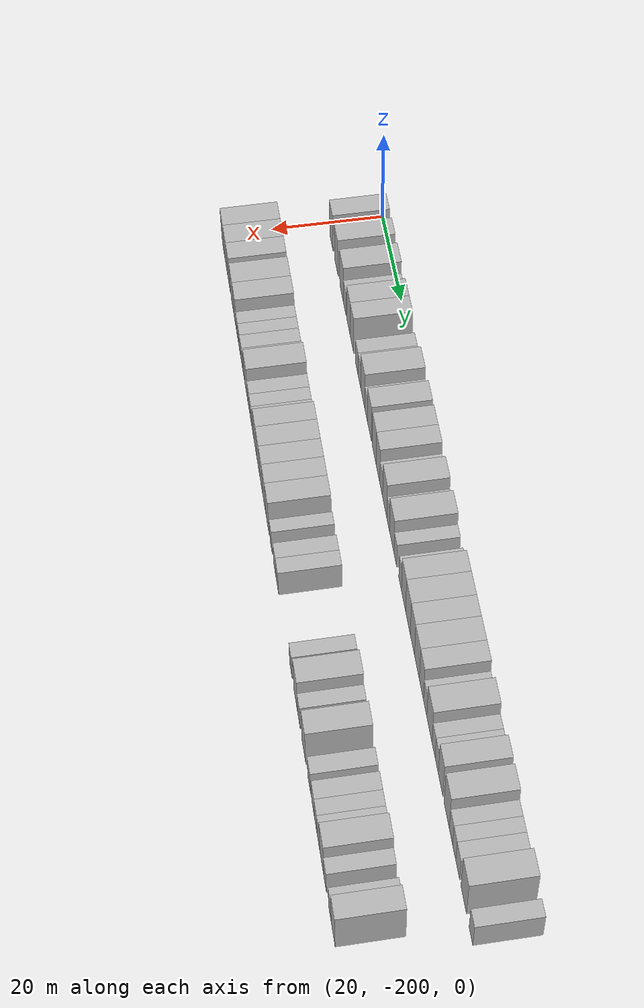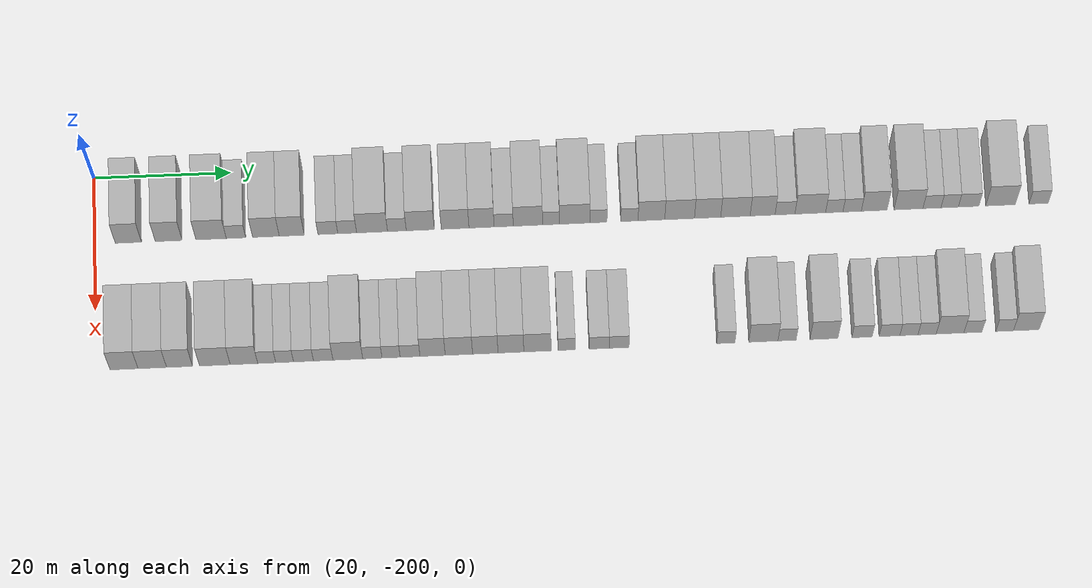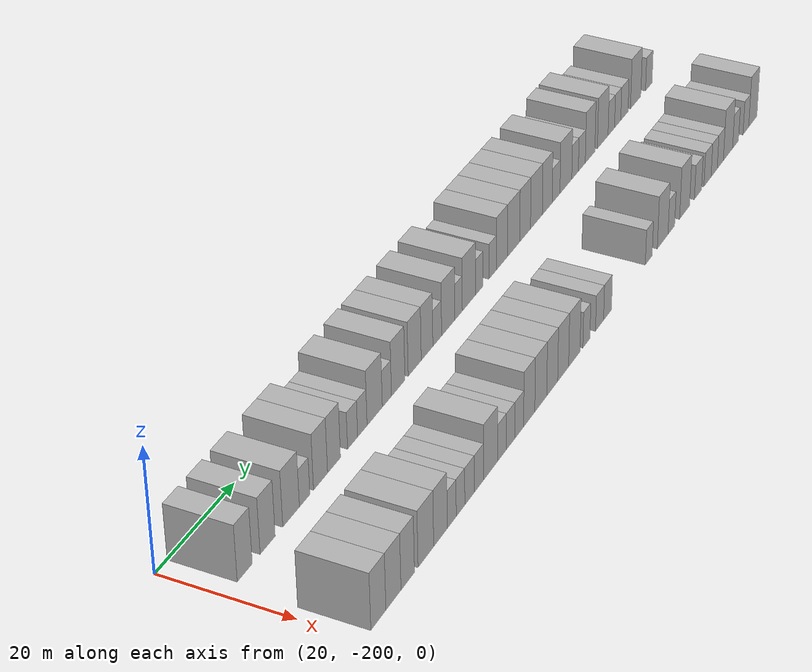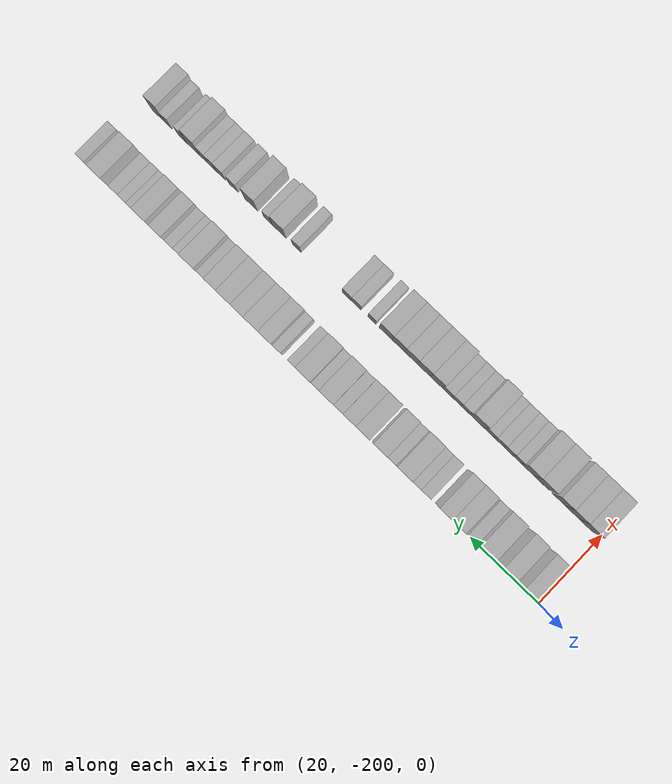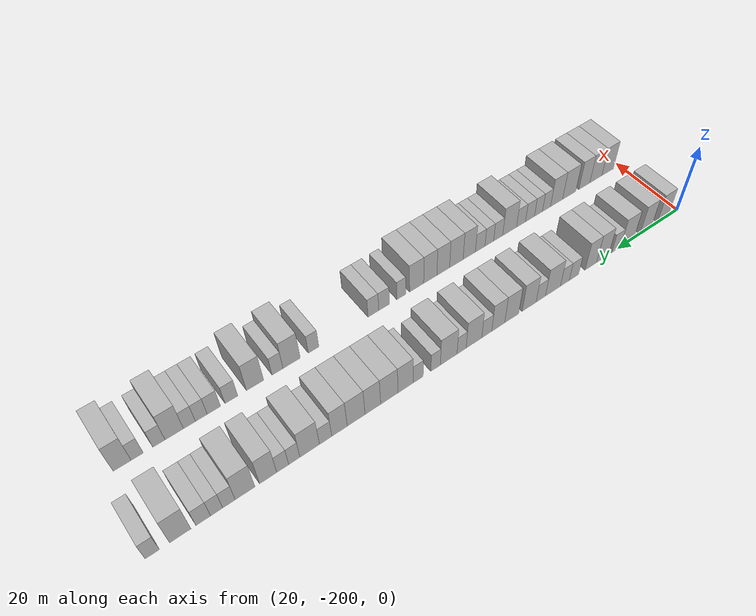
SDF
<sdf version="1.6">
 <world name="default">
  <model name="building_1">
   <static>1</static>
   <pose>25.0000 -195.1013 0 0.000000 0.000000 0.000000</pose>
   <link name="link">
    <pose>0 0 4.50 0 0 0</pose>
    <collision name="collision"><geometry><box><size>10.0000 3.7975 9.0000</size></box></geometry></collision>
    <visual name="visual">
     <cast_shadows>0</cast_shadows>
     <geometry><box><size>10.0000 3.7975 9.0000</size></box></geometry>
     <material>
      <script>
       <uri>model://HANNAS_wall/materials/scripts</uri>
       <uri>model://HANNAS_wall/materials/textures</uri>
       <name>vrc/HANNAS_wall</name>
      </script>
     </material>
    </visual>
   </link>
  </model>
  <model name="building_2">
   <static>1</static>
   <pose>25.0000 -189.2576 0 0.000000 0.000000 0.000000</pose>
   <link name="link">
    <pose>0 0 4.50 0 0 0</pose>
    <collision name="collision"><geometry><box><size>10.0000 3.8899 9.0000</size></box></geometry></collision>
    <visual name="visual">
     <cast_shadows>0</cast_shadows>
     <geometry><box><size>10.0000 3.8899 9.0000</size></box></geometry>
     <material>
      <script>
       <uri>model://HANNAS_wall/materials/scripts</uri>
       <uri>model://HANNAS_wall/materials/textures</uri>
       <name>vrc/HANNAS_wall</name>
      </script>
     </material>
    </visual>
   </link>
  </model>
  <model name="building_3">
   <static>1</static>
   <pose>25.0000 -183.1088 0 0.000000 0.000000 0.000000</pose>
   <link name="link">
    <pose>0 0 4.50 0 0 0</pose>
    <collision name="collision"><geometry><box><size>10.0000 4.4077 9.0000</size></box></geometry></collision>
    <visual name="visual">
     <cast_shadows>0</cast_shadows>
     <geometry><box><size>10.0000 4.4077 9.0000</size></box></geometry>
     <material>
      <script>
       <uri>model://HANNAS_wall/materials/scripts</uri>
       <uri>model://HANNAS_wall/materials/textures</uri>
       <name>vrc/HANNAS_wall</name>
      </script>
     </material>
    </visual>
   </link>
  </model>
  <model name="building_4">
   <static>1</static>
   <pose>25.0000 -179.4958 0 0.000000 0.000000 0.000000</pose>
   <link name="link">
    <pose>0 0 3.00 0 0 0</pose>
    <collision name="collision"><geometry><box><size>10.0000 2.8183 6.0000</size></box></geometry></collision>
    <visual name="visual">
     <cast_shadows>0</cast_shadows>
     <geometry><box><size>10.0000 2.8183 6.0000</size></box></geometry>
     <material>
      <script>
       <uri>model://HANNAS_wall/materials/scripts</uri>
       <uri>model://HANNAS_wall/materials/textures</uri>
       <name>vrc/HANNAS_wall</name>
      </script>
     </material>
    </visual>
   </link>
  </model>
  <model name="building_5">
   <static>1</static>
   <pose>25.0000 -175.1530 0 0.000000 0.000000 0.000000</pose>
   <link name="link">
    <pose>0 0 4.50 0 0 0</pose>
    <collision name="collision"><geometry><box><size>10.0000 3.8672 9.0000</size></box></geometry></collision>
    <visual name="visual">
     <cast_shadows>0</cast_shadows>
     <geometry><box><size>10.0000 3.8672 9.0000</size></box></geometry>
     <material>
      <script>
       <uri>model://HANNAS_wall/materials/scripts</uri>
       <uri>model://HANNAS_wall/materials/textures</uri>
       <name>vrc/HANNAS_wall</name>
      </script>
     </material>
    </visual>
   </link>
  </model>
  <model name="building_6">
   <static>1</static>
   <pose>25.0000 -171.4095 0 0.000000 0.000000 0.000000</pose>
   <link name="link">
    <pose>0 0 4.50 0 0 0</pose>
    <collision name="collision"><geometry><box><size>10.0000 3.6197 9.0000</size></box></geometry></collision>
    <visual name="visual">
     <cast_shadows>0</cast_shadows>
     <geometry><box><size>10.0000 3.6197 9.0000</size></box></geometry>
     <material>
      <script>
       <uri>model://HANNAS_wall/materials/scripts</uri>
       <uri>model://HANNAS_wall/materials/textures</uri>
       <name>vrc/HANNAS_wall</name>
      </script>
     </material>
    </visual>
   </link>
  </model>
  <model name="building_7">
   <static>1</static>
   <pose>25.0000 -166.1617 0 0.000000 0.000000 0.000000</pose>
   <link name="link">
    <pose>0 0 3.00 0 0 0</pose>
    <collision name="collision"><geometry><box><size>10.0000 2.8759 6.0000</size></box></geometry></collision>
    <visual name="visual">
     <cast_shadows>0</cast_shadows>
     <geometry><box><size>10.0000 2.8759 6.0000</size></box></geometry>
     <material>
      <script>
       <uri>model://HANNAS_wall/materials/scripts</uri>
       <uri>model://HANNAS_wall/materials/textures</uri>
       <name>vrc/HANNAS_wall</name>
      </script>
     </material>
    </visual>
   </link>
  </model>
  <model name="building_8">
   <static>1</static>
   <pose>25.0000 -163.3585 0 0.000000 0.000000 0.000000</pose>
   <link name="link">
    <pose>0 0 3.00 0 0 0</pose>
    <collision name="collision"><geometry><box><size>10.0000 2.7304 6.0000</size></box></geometry></collision>
    <visual name="visual">
     <cast_shadows>0</cast_shadows>
     <geometry><box><size>10.0000 2.7304 6.0000</size></box></geometry>
     <material>
      <script>
       <uri>model://HANNAS_wall/materials/scripts</uri>
       <uri>model://HANNAS_wall/materials/textures</uri>
       <name>vrc/HANNAS_wall</name>
      </script>
     </material>
    </visual>
   </link>
  </model>
  <model name="building_9">
   <static>1</static>
   <pose>25.0000 -159.7490 0 0.000000 0.000000 0.000000</pose>
   <link name="link">
    <pose>0 0 4.50 0 0 0</pose>
    <collision name="collision"><geometry><box><size>10.0000 4.4887 9.0000</size></box></geometry></collision>
    <visual name="visual">
     <cast_shadows>0</cast_shadows>
     <geometry><box><size>10.0000 4.4887 9.0000</size></box></geometry>
     <material>
      <script>
       <uri>model://HANNAS_wall/materials/scripts</uri>
       <uri>model://HANNAS_wall/materials/textures</uri>
       <name>vrc/HANNAS_wall</name>
      </script>
     </material>
    </visual>
   </link>
  </model>
  <model name="building_10">
   <static>1</static>
   <pose>25.0000 -156.1416 0 0.000000 0.000000 0.000000</pose>
   <link name="link">
    <pose>0 0 3.00 0 0 0</pose>
    <collision name="collision"><geometry><box><size>10.0000 2.7260 6.0000</size></box></geometry></collision>
    <visual name="visual">
     <cast_shadows>0</cast_shadows>
     <geometry><box><size>10.0000 2.7260 6.0000</size></box></geometry>
     <material>
      <script>
       <uri>model://HANNAS_wall/materials/scripts</uri>
       <uri>model://HANNAS_wall/materials/textures</uri>
       <name>vrc/HANNAS_wall</name>
      </script>
     </material>
    </visual>
   </link>
  </model>
  <model name="building_11">
   <static>1</static>
   <pose>25.0000 -152.7426 0 0.000000 0.000000 0.000000</pose>
   <link name="link">
    <pose>0 0 4.50 0 0 0</pose>
    <collision name="collision"><geometry><box><size>10.0000 4.0721 9.0000</size></box></geometry></collision>
    <visual name="visual">
     <cast_shadows>0</cast_shadows>
     <geometry><box><size>10.0000 4.0721 9.0000</size></box></geometry>
     <material>
      <script>
       <uri>model://HANNAS_wall/materials/scripts</uri>
       <uri>model://HANNAS_wall/materials/textures</uri>
       <name>vrc/HANNAS_wall</name>
      </script>
     </material>
    </visual>
   </link>
  </model>
  <model name="building_12">
   <static>1</static>
   <pose>25.0000 -147.6966 0 0.000000 0.000000 0.000000</pose>
   <link name="link">
    <pose>0 0 4.50 0 0 0</pose>
    <collision name="collision"><geometry><box><size>10.0000 4.0199 9.0000</size></box></geometry></collision>
    <visual name="visual">
     <cast_shadows>0</cast_shadows>
     <geometry><box><size>10.0000 4.0199 9.0000</size></box></geometry>
     <material>
      <script>
       <uri>model://HANNAS_wall/materials/scripts</uri>
       <uri>model://HANNAS_wall/materials/textures</uri>
       <name>vrc/HANNAS_wall</name>
      </script>
     </material>
    </visual>
   </link>
  </model>
  <model name="building_13">
   <static>1</static>
   <pose>25.0000 -143.8593 0 0.000000 0.000000 0.000000</pose>
   <link name="link">
    <pose>0 0 4.50 0 0 0</pose>
    <collision name="collision"><geometry><box><size>10.0000 3.6547 9.0000</size></box></geometry></collision>
    <visual name="visual">
     <cast_shadows>0</cast_shadows>
     <geometry><box><size>10.0000 3.6547 9.0000</size></box></geometry>
     <material>
      <script>
       <uri>model://HANNAS_wall/materials/scripts</uri>
       <uri>model://HANNAS_wall/materials/textures</uri>
       <name>vrc/HANNAS_wall</name>
      </script>
     </material>
    </visual>
   </link>
  </model>
  <model name="building_14">
   <static>1</static>
   <pose>25.0000 -140.6452 0 0.000000 0.000000 0.000000</pose>
   <link name="link">
    <pose>0 0 3.00 0 0 0</pose>
    <collision name="collision"><geometry><box><size>10.0000 2.7734 6.0000</size></box></geometry></collision>
    <visual name="visual">
     <cast_shadows>0</cast_shadows>
     <geometry><box><size>10.0000 2.7734 6.0000</size></box></geometry>
     <material>
      <script>
       <uri>model://HANNAS_wall/materials/scripts</uri>
       <uri>model://HANNAS_wall/materials/textures</uri>
       <name>vrc/HANNAS_wall</name>
      </script>
     </material>
    </visual>
   </link>
  </model>
  <model name="building_15">
   <static>1</static>
   <pose>25.0000 -137.1260 0 0.000000 0.000000 0.000000</pose>
   <link name="link">
    <pose>0 0 4.50 0 0 0</pose>
    <collision name="collision"><geometry><box><size>10.0000 4.2651 9.0000</size></box></geometry></collision>
    <visual name="visual">
     <cast_shadows>0</cast_shadows>
     <geometry><box><size>10.0000 4.2651 9.0000</size></box></geometry>
     <material>
      <script>
       <uri>model://HANNAS_wall/materials/scripts</uri>
       <uri>model://HANNAS_wall/materials/textures</uri>
       <name>vrc/HANNAS_wall</name>
      </script>
     </material>
    </visual>
   </link>
  </model>
  <model name="building_16">
   <static>1</static>
   <pose>25.0000 -133.7711 0 0.000000 0.000000 0.000000</pose>
   <link name="link">
    <pose>0 0 3.00 0 0 0</pose>
    <collision name="collision"><geometry><box><size>10.0000 2.4447 6.0000</size></box></geometry></collision>
    <visual name="visual">
     <cast_shadows>0</cast_shadows>
     <geometry><box><size>10.0000 2.4447 6.0000</size></box></geometry>
     <material>
      <script>
       <uri>model://HANNAS_wall/materials/scripts</uri>
       <uri>model://HANNAS_wall/materials/textures</uri>
       <name>vrc/HANNAS_wall</name>
      </script>
     </material>
    </visual>
   </link>
  </model>
  <model name="building_17">
   <static>1</static>
   <pose>25.0000 -130.3299 0 0.000000 0.000000 0.000000</pose>
   <link name="link">
    <pose>0 0 4.50 0 0 0</pose>
    <collision name="collision"><geometry><box><size>10.0000 4.4376 9.0000</size></box></geometry></collision>
    <visual name="visual">
     <cast_shadows>0</cast_shadows>
     <geometry><box><size>10.0000 4.4376 9.0000</size></box></geometry>
     <material>
      <script>
       <uri>model://HANNAS_wall/materials/scripts</uri>
       <uri>model://HANNAS_wall/materials/textures</uri>
       <name>vrc/HANNAS_wall</name>
      </script>
     </material>
    </visual>
   </link>
  </model>
  <model name="building_18">
   <static>1</static>
   <pose>25.0000 -126.8712 0 0.000000 0.000000 0.000000</pose>
   <link name="link">
    <pose>0 0 3.00 0 0 0</pose>
    <collision name="collision"><geometry><box><size>10.0000 2.4798 6.0000</size></box></geometry></collision>
    <visual name="visual">
     <cast_shadows>0</cast_shadows>
     <geometry><box><size>10.0000 2.4798 6.0000</size></box></geometry>
     <material>
      <script>
       <uri>model://HANNAS_wall/materials/scripts</uri>
       <uri>model://HANNAS_wall/materials/textures</uri>
       <name>vrc/HANNAS_wall</name>
      </script>
     </material>
    </visual>
   </link>
  </model>
  <model name="building_19">
   <static>1</static>
   <pose>25.0000 -122.3737 0 0.000000 0.000000 0.000000</pose>
   <link name="link">
    <pose>0 0 3.00 0 0 0</pose>
    <collision name="collision"><geometry><box><size>10.0000 2.5151 6.0000</size></box></geometry></collision>
    <visual name="visual">
     <cast_shadows>0</cast_shadows>
     <geometry><box><size>10.0000 2.5151 6.0000</size></box></geometry>
     <material>
      <script>
       <uri>model://HANNAS_wall/materials/scripts</uri>
       <uri>model://HANNAS_wall/materials/textures</uri>
       <name>vrc/HANNAS_wall</name>
      </script>
     </material>
    </visual>
   </link>
  </model>
  <model name="building_20">
   <static>1</static>
   <pose>25.0000 -119.1748 0 0.000000 0.000000 0.000000</pose>
   <link name="link">
    <pose>0 0 4.50 0 0 0</pose>
    <collision name="collision"><geometry><box><size>10.0000 3.8827 9.0000</size></box></geometry></collision>
    <visual name="visual">
     <cast_shadows>0</cast_shadows>
     <geometry><box><size>10.0000 3.8827 9.0000</size></box></geometry>
     <material>
      <script>
       <uri>model://HANNAS_wall/materials/scripts</uri>
       <uri>model://HANNAS_wall/materials/textures</uri>
       <name>vrc/HANNAS_wall</name>
      </script>
     </material>
    </visual>
   </link>
  </model>
  <model name="building_21">
   <static>1</static>
   <pose>25.0000 -115.0764 0 0.000000 0.000000 0.000000</pose>
   <link name="link">
    <pose>0 0 4.50 0 0 0</pose>
    <collision name="collision"><geometry><box><size>10.0000 4.3143 9.0000</size></box></geometry></collision>
    <visual name="visual">
     <cast_shadows>0</cast_shadows>
     <geometry><box><size>10.0000 4.3143 9.0000</size></box></geometry>
     <material>
      <script>
       <uri>model://HANNAS_wall/materials/scripts</uri>
       <uri>model://HANNAS_wall/materials/textures</uri>
       <name>vrc/HANNAS_wall</name>
      </script>
     </material>
    </visual>
   </link>
  </model>
  <model name="building_22">
   <static>1</static>
   <pose>25.0000 -111.0092 0 0.000000 0.000000 0.000000</pose>
   <link name="link">
    <pose>0 0 4.50 0 0 0</pose>
    <collision name="collision"><geometry><box><size>10.0000 3.8200 9.0000</size></box></geometry></collision>
    <visual name="visual">
     <cast_shadows>0</cast_shadows>
     <geometry><box><size>10.0000 3.8200 9.0000</size></box></geometry>
     <material>
      <script>
       <uri>model://HANNAS_wall/materials/scripts</uri>
       <uri>model://HANNAS_wall/materials/textures</uri>
       <name>vrc/HANNAS_wall</name>
      </script>
     </material>
    </visual>
   </link>
  </model>
  <model name="building_23">
   <static>1</static>
   <pose>25.0000 -106.9611 0 0.000000 0.000000 0.000000</pose>
   <link name="link">
    <pose>0 0 4.50 0 0 0</pose>
    <collision name="collision"><geometry><box><size>10.0000 4.2764 9.0000</size></box></geometry></collision>
    <visual name="visual">
     <cast_shadows>0</cast_shadows>
     <geometry><box><size>10.0000 4.2764 9.0000</size></box></geometry>
     <material>
      <script>
       <uri>model://HANNAS_wall/materials/scripts</uri>
       <uri>model://HANNAS_wall/materials/textures</uri>
       <name>vrc/HANNAS_wall</name>
      </script>
     </material>
    </visual>
   </link>
  </model>
  <model name="building_24">
   <static>1</static>
   <pose>25.0000 -103.0037 0 0.000000 0.000000 0.000000</pose>
   <link name="link">
    <pose>0 0 4.50 0 0 0</pose>
    <collision name="collision"><geometry><box><size>10.0000 3.6384 9.0000</size></box></geometry></collision>
    <visual name="visual">
     <cast_shadows>0</cast_shadows>
     <geometry><box><size>10.0000 3.6384 9.0000</size></box></geometry>
     <material>
      <script>
       <uri>model://HANNAS_wall/materials/scripts</uri>
       <uri>model://HANNAS_wall/materials/textures</uri>
       <name>vrc/HANNAS_wall</name>
      </script>
     </material>
    </visual>
   </link>
  </model>
  <model name="building_25">
   <static>1</static>
   <pose>25.0000 -99.7405 0 0.000000 0.000000 0.000000</pose>
   <link name="link">
    <pose>0 0 3.00 0 0 0</pose>
    <collision name="collision"><geometry><box><size>10.0000 2.8878 6.0000</size></box></geometry></collision>
    <visual name="visual">
     <cast_shadows>0</cast_shadows>
     <geometry><box><size>10.0000 2.8878 6.0000</size></box></geometry>
     <material>
      <script>
       <uri>model://HANNAS_wall/materials/scripts</uri>
       <uri>model://HANNAS_wall/materials/textures</uri>
       <name>vrc/HANNAS_wall</name>
      </script>
     </material>
    </visual>
   </link>
  </model>
  <model name="building_26">
   <static>1</static>
   <pose>25.0000 -96.0663 0 0.000000 0.000000 0.000000</pose>
   <link name="link">
    <pose>0 0 4.50 0 0 0</pose>
    <collision name="collision"><geometry><box><size>10.0000 4.4608 9.0000</size></box></geometry></collision>
    <visual name="visual">
     <cast_shadows>0</cast_shadows>
     <geometry><box><size>10.0000 4.4608 9.0000</size></box></geometry>
     <material>
      <script>
       <uri>model://HANNAS_wall/materials/scripts</uri>
       <uri>model://HANNAS_wall/materials/textures</uri>
       <name>vrc/HANNAS_wall</name>
      </script>
     </material>
    </visual>
   </link>
  </model>
  <model name="building_27">
   <static>1</static>
   <pose>25.0000 -92.5703 0 0.000000 0.000000 0.000000</pose>
   <link name="link">
    <pose>0 0 3.00 0 0 0</pose>
    <collision name="collision"><geometry><box><size>10.0000 2.5311 6.0000</size></box></geometry></collision>
    <visual name="visual">
     <cast_shadows>0</cast_shadows>
     <geometry><box><size>10.0000 2.5311 6.0000</size></box></geometry>
     <material>
      <script>
       <uri>model://HANNAS_wall/materials/scripts</uri>
       <uri>model://HANNAS_wall/materials/textures</uri>
       <name>vrc/HANNAS_wall</name>
      </script>
     </material>
    </visual>
   </link>
  </model>
  <model name="building_28">
   <static>1</static>
   <pose>25.0000 -89.9703 0 0.000000 0.000000 0.000000</pose>
   <link name="link">
    <pose>0 0 3.00 0 0 0</pose>
    <collision name="collision"><geometry><box><size>10.0000 2.6690 6.0000</size></box></geometry></collision>
    <visual name="visual">
     <cast_shadows>0</cast_shadows>
     <geometry><box><size>10.0000 2.6690 6.0000</size></box></geometry>
     <material>
      <script>
       <uri>model://HANNAS_wall/materials/scripts</uri>
       <uri>model://HANNAS_wall/materials/textures</uri>
       <name>vrc/HANNAS_wall</name>
      </script>
     </material>
    </visual>
   </link>
  </model>
  <model name="building_29">
   <static>1</static>
   <pose>25.0000 -86.7608 0 0.000000 0.000000 0.000000</pose>
   <link name="link">
    <pose>0 0 4.50 0 0 0</pose>
    <collision name="collision"><geometry><box><size>10.0000 3.7500 9.0000</size></box></geometry></collision>
    <visual name="visual">
     <cast_shadows>0</cast_shadows>
     <geometry><box><size>10.0000 3.7500 9.0000</size></box></geometry>
     <material>
      <script>
       <uri>model://HANNAS_wall/materials/scripts</uri>
       <uri>model://HANNAS_wall/materials/textures</uri>
       <name>vrc/HANNAS_wall</name>
      </script>
     </material>
    </visual>
   </link>
  </model>
  <model name="building_30">
   <static>1</static>
   <pose>25.0000 -81.7724 0 0.000000 0.000000 0.000000</pose>
   <link name="link">
    <pose>0 0 4.50 0 0 0</pose>
    <collision name="collision"><geometry><box><size>10.0000 4.2270 9.0000</size></box></geometry></collision>
    <visual name="visual">
     <cast_shadows>0</cast_shadows>
     <geometry><box><size>10.0000 4.2270 9.0000</size></box></geometry>
     <material>
      <script>
       <uri>model://HANNAS_wall/materials/scripts</uri>
       <uri>model://HANNAS_wall/materials/textures</uri>
       <name>vrc/HANNAS_wall</name>
      </script>
     </material>
    </visual>
   </link>
  </model>
  <model name="building_31">
   <static>1</static>
   <pose>25.0000 -78.3434 0 0.000000 0.000000 0.000000</pose>
   <link name="link">
    <pose>0 0 3.00 0 0 0</pose>
    <collision name="collision"><geometry><box><size>10.0000 2.6310 6.0000</size></box></geometry></collision>
    <visual name="visual">
     <cast_shadows>0</cast_shadows>
     <geometry><box><size>10.0000 2.6310 6.0000</size></box></geometry>
     <material>
      <script>
       <uri>model://HANNAS_wall/materials/scripts</uri>
       <uri>model://HANNAS_wall/materials/textures</uri>
       <name>vrc/HANNAS_wall</name>
      </script>
     </material>
    </visual>
   </link>
  </model>
  <model name="building_32">
   <static>1</static>
   <pose>25.0000 -75.7608 0 0.000000 0.000000 0.000000</pose>
   <link name="link">
    <pose>0 0 3.00 0 0 0</pose>
    <collision name="collision"><geometry><box><size>10.0000 2.5341 6.0000</size></box></geometry></collision>
    <visual name="visual">
     <cast_shadows>0</cast_shadows>
     <geometry><box><size>10.0000 2.5341 6.0000</size></box></geometry>
     <material>
      <script>
       <uri>model://HANNAS_wall/materials/scripts</uri>
       <uri>model://HANNAS_wall/materials/textures</uri>
       <name>vrc/HANNAS_wall</name>
      </script>
     </material>
    </visual>
   </link>
  </model>
  <model name="building_33">
   <static>1</static>
   <pose>25.0000 -72.9975 0 0.000000 0.000000 0.000000</pose>
   <link name="link">
    <pose>0 0 3.00 0 0 0</pose>
    <collision name="collision"><geometry><box><size>10.0000 2.9925 6.0000</size></box></geometry></collision>
    <visual name="visual">
     <cast_shadows>0</cast_shadows>
     <geometry><box><size>10.0000 2.9925 6.0000</size></box></geometry>
     <material>
      <script>
       <uri>model://HANNAS_wall/materials/scripts</uri>
       <uri>model://HANNAS_wall/materials/textures</uri>
       <name>vrc/HANNAS_wall</name>
      </script>
     </material>
    </visual>
   </link>
  </model>
  <model name="building_34">
   <static>1</static>
   <pose>25.0000 -68.3537 0 0.000000 0.000000 0.000000</pose>
   <link name="link">
    <pose>0 0 4.50 0 0 0</pose>
    <collision name="collision"><geometry><box><size>10.0000 4.2952 9.0000</size></box></geometry></collision>
    <visual name="visual">
     <cast_shadows>0</cast_shadows>
     <geometry><box><size>10.0000 4.2952 9.0000</size></box></geometry>
     <material>
      <script>
       <uri>model://HANNAS_wall/materials/scripts</uri>
       <uri>model://HANNAS_wall/materials/textures</uri>
       <name>vrc/HANNAS_wall</name>
      </script>
     </material>
    </visual>
   </link>
  </model>
  <model name="building_35">
   <static>1</static>
   <pose>25.0000 -62.8102 0 0.000000 0.000000 0.000000</pose>
   <link name="link">
    <pose>0 0 3.00 0 0 0</pose>
    <collision name="collision"><geometry><box><size>10.0000 2.7916 6.0000</size></box></geometry></collision>
    <visual name="visual">
     <cast_shadows>0</cast_shadows>
     <geometry><box><size>10.0000 2.7916 6.0000</size></box></geometry>
     <material>
      <script>
       <uri>model://HANNAS_wall/materials/scripts</uri>
       <uri>model://HANNAS_wall/materials/textures</uri>
       <name>vrc/HANNAS_wall</name>
      </script>
     </material>
    </visual>
   </link>
  </model>
  <model name="building_100">
   <static>1</static>
   <pose>44.0000 -195.9885 0 0.000000 0.000000 0.000000</pose>
   <link name="link">
    <pose>0 0 4.50 0 0 0</pose>
    <collision name="collision"><geometry><box><size>10.0000 4.0231 9.0000</size></box></geometry></collision>
    <visual name="visual">
     <cast_shadows>0</cast_shadows>
     <geometry><box><size>10.0000 4.0231 9.0000</size></box></geometry>
     <material>
      <script>
       <uri>model://HANNAS_wall/materials/scripts</uri>
       <uri>model://HANNAS_wall/materials/textures</uri>
       <name>vrc/HANNAS_wall</name>
      </script>
     </material>
    </visual>
   </link>
  </model>
  <model name="building_101">
   <static>1</static>
   <pose>44.0000 -191.9277 0 0.000000 0.000000 0.000000</pose>
   <link name="link">
    <pose>0 0 4.50 0 0 0</pose>
    <collision name="collision"><geometry><box><size>10.0000 4.0985 9.0000</size></box></geometry></collision>
    <visual name="visual">
     <cast_shadows>0</cast_shadows>
     <geometry><box><size>10.0000 4.0985 9.0000</size></box></geometry>
     <material>
      <script>
       <uri>model://HANNAS_wall/materials/scripts</uri>
       <uri>model://HANNAS_wall/materials/textures</uri>
       <name>vrc/HANNAS_wall</name>
      </script>
     </material>
    </visual>
   </link>
  </model>
  <model name="building_102">
   <static>1</static>
   <pose>44.0000 -188.0148 0 0.000000 0.000000 0.000000</pose>
   <link name="link">
    <pose>0 0 4.50 0 0 0</pose>
    <collision name="collision"><geometry><box><size>10.0000 3.7272 9.0000</size></box></geometry></collision>
    <visual name="visual">
     <cast_shadows>0</cast_shadows>
     <geometry><box><size>10.0000 3.7272 9.0000</size></box></geometry>
     <material>
      <script>
       <uri>model://HANNAS_wall/materials/scripts</uri>
       <uri>model://HANNAS_wall/materials/textures</uri>
       <name>vrc/HANNAS_wall</name>
      </script>
     </material>
    </visual>
   </link>
  </model>
  <model name="building_103">
   <static>1</static>
   <pose>44.0000 -182.9445 0 0.000000 0.000000 0.000000</pose>
   <link name="link">
    <pose>0 0 4.50 0 0 0</pose>
    <collision name="collision"><geometry><box><size>10.0000 4.4134 9.0000</size></box></geometry></collision>
    <visual name="visual">
     <cast_shadows>0</cast_shadows>
     <geometry><box><size>10.0000 4.4134 9.0000</size></box></geometry>
     <material>
      <script>
       <uri>model://HANNAS_wall/materials/scripts</uri>
       <uri>model://HANNAS_wall/materials/textures</uri>
       <name>vrc/HANNAS_wall</name>
      </script>
     </material>
    </visual>
   </link>
  </model>
  <model name="building_104">
   <static>1</static>
   <pose>44.0000 -178.7614 0 0.000000 0.000000 0.000000</pose>
   <link name="link">
    <pose>0 0 4.50 0 0 0</pose>
    <collision name="collision"><geometry><box><size>10.0000 3.9527 9.0000</size></box></geometry></collision>
    <visual name="visual">
     <cast_shadows>0</cast_shadows>
     <geometry><box><size>10.0000 3.9527 9.0000</size></box></geometry>
     <material>
      <script>
       <uri>model://HANNAS_wall/materials/scripts</uri>
       <uri>model://HANNAS_wall/materials/textures</uri>
       <name>vrc/HANNAS_wall</name>
      </script>
     </material>
    </visual>
   </link>
  </model>
  <model name="building_105">
   <static>1</static>
   <pose>44.0000 -175.4859 0 0.000000 0.000000 0.000000</pose>
   <link name="link">
    <pose>0 0 3.00 0 0 0</pose>
    <collision name="collision"><geometry><box><size>10.0000 2.5982 6.0000</size></box></geometry></collision>
    <visual name="visual">
     <cast_shadows>0</cast_shadows>
     <geometry><box><size>10.0000 2.5982 6.0000</size></box></geometry>
     <material>
      <script>
       <uri>model://HANNAS_wall/materials/scripts</uri>
       <uri>model://HANNAS_wall/materials/textures</uri>
       <name>vrc/HANNAS_wall</name>
      </script>
     </material>
    </visual>
   </link>
  </model>
  <model name="building_106">
   <static>1</static>
   <pose>44.0000 -172.9126 0 0.000000 0.000000 0.000000</pose>
   <link name="link">
    <pose>0 0 3.00 0 0 0</pose>
    <collision name="collision"><geometry><box><size>10.0000 2.5484 6.0000</size></box></geometry></collision>
    <visual name="visual">
     <cast_shadows>0</cast_shadows>
     <geometry><box><size>10.0000 2.5484 6.0000</size></box></geometry>
     <material>
      <script>
       <uri>model://HANNAS_wall/materials/scripts</uri>
       <uri>model://HANNAS_wall/materials/textures</uri>
       <name>vrc/HANNAS_wall</name>
      </script>
     </material>
    </visual>
   </link>
  </model>
  <model name="building_107">
   <static>1</static>
   <pose>44.0000 -170.2037 0 0.000000 0.000000 0.000000</pose>
   <link name="link">
    <pose>0 0 3.00 0 0 0</pose>
    <collision name="collision"><geometry><box><size>10.0000 2.8694 6.0000</size></box></geometry></collision>
    <visual name="visual">
     <cast_shadows>0</cast_shadows>
     <geometry><box><size>10.0000 2.8694 6.0000</size></box></geometry>
     <material>
      <script>
       <uri>model://HANNAS_wall/materials/scripts</uri>
       <uri>model://HANNAS_wall/materials/textures</uri>
       <name>vrc/HANNAS_wall</name>
      </script>
     </material>
    </visual>
   </link>
  </model>
  <model name="building_108">
   <static>1</static>
   <pose>44.0000 -167.3730 0 0.000000 0.000000 0.000000</pose>
   <link name="link">
    <pose>0 0 3.00 0 0 0</pose>
    <collision name="collision"><geometry><box><size>10.0000 2.7921 6.0000</size></box></geometry></collision>
    <visual name="visual">
     <cast_shadows>0</cast_shadows>
     <geometry><box><size>10.0000 2.7921 6.0000</size></box></geometry>
     <material>
      <script>
       <uri>model://HANNAS_wall/materials/scripts</uri>
       <uri>model://HANNAS_wall/materials/textures</uri>
       <name>vrc/HANNAS_wall</name>
      </script>
     </material>
    </visual>
   </link>
  </model>
  <model name="building_109">
   <static>1</static>
   <pose>44.0000 -163.8297 0 0.000000 0.000000 0.000000</pose>
   <link name="link">
    <pose>0 0 4.50 0 0 0</pose>
    <collision name="collision"><geometry><box><size>10.0000 4.2944 9.0000</size></box></geometry></collision>
    <visual name="visual">
     <cast_shadows>0</cast_shadows>
     <geometry><box><size>10.0000 4.2944 9.0000</size></box></geometry>
     <material>
      <script>
       <uri>model://HANNAS_wall/materials/scripts</uri>
       <uri>model://HANNAS_wall/materials/textures</uri>
       <name>vrc/HANNAS_wall</name>
      </script>
     </material>
    </visual>
   </link>
  </model>
  <model name="building_110">
   <static>1</static>
   <pose>44.0000 -160.3004 0 0.000000 0.000000 0.000000</pose>
   <link name="link">
    <pose>0 0 3.00 0 0 0</pose>
    <collision name="collision"><geometry><box><size>10.0000 2.7643 6.0000</size></box></geometry></collision>
    <visual name="visual">
     <cast_shadows>0</cast_shadows>
     <geometry><box><size>10.0000 2.7643 6.0000</size></box></geometry>
     <material>
      <script>
       <uri>model://HANNAS_wall/materials/scripts</uri>
       <uri>model://HANNAS_wall/materials/textures</uri>
       <name>vrc/HANNAS_wall</name>
      </script>
     </material>
    </visual>
   </link>
  </model>
  <model name="building_111">
   <static>1</static>
   <pose>44.0000 -157.6108 0 0.000000 0.000000 0.000000</pose>
   <link name="link">
    <pose>0 0 3.00 0 0 0</pose>
    <collision name="collision"><geometry><box><size>10.0000 2.6148 6.0000</size></box></geometry></collision>
    <visual name="visual">
     <cast_shadows>0</cast_shadows>
     <geometry><box><size>10.0000 2.6148 6.0000</size></box></geometry>
     <material>
      <script>
       <uri>model://HANNAS_wall/materials/scripts</uri>
       <uri>model://HANNAS_wall/materials/textures</uri>
       <name>vrc/HANNAS_wall</name>
      </script>
     </material>
    </visual>
   </link>
  </model>
  <model name="building_112">
   <static>1</static>
   <pose>44.0000 -154.8765 0 0.000000 0.000000 0.000000</pose>
   <link name="link">
    <pose>0 0 3.00 0 0 0</pose>
    <collision name="collision"><geometry><box><size>10.0000 2.8537 6.0000</size></box></geometry></collision>
    <visual name="visual">
     <cast_shadows>0</cast_shadows>
     <geometry><box><size>10.0000 2.8537 6.0000</size></box></geometry>
     <material>
      <script>
       <uri>model://HANNAS_wall/materials/scripts</uri>
       <uri>model://HANNAS_wall/materials/textures</uri>
       <name>vrc/HANNAS_wall</name>
      </script>
     </material>
    </visual>
   </link>
  </model>
  <model name="building_113">
   <static>1</static>
   <pose>44.0000 -151.6325 0 0.000000 0.000000 0.000000</pose>
   <link name="link">
    <pose>0 0 4.50 0 0 0</pose>
    <collision name="collision"><geometry><box><size>10.0000 3.6344 9.0000</size></box></geometry></collision>
    <visual name="visual">
     <cast_shadows>0</cast_shadows>
     <geometry><box><size>10.0000 3.6344 9.0000</size></box></geometry>
     <material>
      <script>
       <uri>model://HANNAS_wall/materials/scripts</uri>
       <uri>model://HANNAS_wall/materials/textures</uri>
       <name>vrc/HANNAS_wall</name>
      </script>
     </material>
    </visual>
   </link>
  </model>
  <model name="building_114">
   <static>1</static>
   <pose>44.0000 -147.8503 0 0.000000 0.000000 0.000000</pose>
   <link name="link">
    <pose>0 0 4.50 0 0 0</pose>
    <collision name="collision"><geometry><box><size>10.0000 3.9299 9.0000</size></box></geometry></collision>
    <visual name="visual">
     <cast_shadows>0</cast_shadows>
     <geometry><box><size>10.0000 3.9299 9.0000</size></box></geometry>
     <material>
      <script>
       <uri>model://HANNAS_wall/materials/scripts</uri>
       <uri>model://HANNAS_wall/materials/textures</uri>
       <name>vrc/HANNAS_wall</name>
      </script>
     </material>
    </visual>
   </link>
  </model>
  <model name="building_115">
   <static>1</static>
   <pose>44.0000 -144.0570 0 0.000000 0.000000 0.000000</pose>
   <link name="link">
    <pose>0 0 4.50 0 0 0</pose>
    <collision name="collision"><geometry><box><size>10.0000 3.6568 9.0000</size></box></geometry></collision>
    <visual name="visual">
     <cast_shadows>0</cast_shadows>
     <geometry><box><size>10.0000 3.6568 9.0000</size></box></geometry>
     <material>
      <script>
       <uri>model://HANNAS_wall/materials/scripts</uri>
       <uri>model://HANNAS_wall/materials/textures</uri>
       <name>vrc/HANNAS_wall</name>
      </script>
     </material>
    </visual>
   </link>
  </model>
  <model name="building_116">
   <static>1</static>
   <pose>44.0000 -140.3712 0 0.000000 0.000000 0.000000</pose>
   <link name="link">
    <pose>0 0 4.50 0 0 0</pose>
    <collision name="collision"><geometry><box><size>10.0000 3.7147 9.0000</size></box></geometry></collision>
    <visual name="visual">
     <cast_shadows>0</cast_shadows>
     <geometry><box><size>10.0000 3.7147 9.0000</size></box></geometry>
     <material>
      <script>
       <uri>model://HANNAS_wall/materials/scripts</uri>
       <uri>model://HANNAS_wall/materials/textures</uri>
       <name>vrc/HANNAS_wall</name>
      </script>
     </material>
    </visual>
   </link>
  </model>
  <model name="building_117">
   <static>1</static>
   <pose>44.0000 -136.5452 0 0.000000 0.000000 0.000000</pose>
   <link name="link">
    <pose>0 0 4.50 0 0 0</pose>
    <collision name="collision"><geometry><box><size>10.0000 3.9373 9.0000</size></box></geometry></collision>
    <visual name="visual">
     <cast_shadows>0</cast_shadows>
     <geometry><box><size>10.0000 3.9373 9.0000</size></box></geometry>
     <material>
      <script>
       <uri>model://HANNAS_wall/materials/scripts</uri>
       <uri>model://HANNAS_wall/materials/textures</uri>
       <name>vrc/HANNAS_wall</name>
      </script>
     </material>
    </visual>
   </link>
  </model>
  <model name="building_118">
   <static>1</static>
   <pose>44.0000 -132.3451 0 0.000000 0.000000 0.000000</pose>
   <link name="link">
    <pose>0 0 3.00 0 0 0</pose>
    <collision name="collision"><geometry><box><size>10.0000 2.4629 6.0000</size></box></geometry></collision>
    <visual name="visual">
     <cast_shadows>0</cast_shadows>
     <geometry><box><size>10.0000 2.4629 6.0000</size></box></geometry>
     <material>
      <script>
       <uri>model://HANNAS_wall/materials/scripts</uri>
       <uri>model://HANNAS_wall/materials/textures</uri>
       <name>vrc/HANNAS_wall</name>
      </script>
     </material>
    </visual>
   </link>
  </model>
  <model name="building_119">
   <static>1</static>
   <pose>44.0000 -127.6692 0 0.000000 0.000000 0.000000</pose>
   <link name="link">
    <pose>0 0 3.00 0 0 0</pose>
    <collision name="collision"><geometry><box><size>10.0000 2.8890 6.0000</size></box></geometry></collision>
    <visual name="visual">
     <cast_shadows>0</cast_shadows>
     <geometry><box><size>10.0000 2.8890 6.0000</size></box></geometry>
     <material>
      <script>
       <uri>model://HANNAS_wall/materials/scripts</uri>
       <uri>model://HANNAS_wall/materials/textures</uri>
       <name>vrc/HANNAS_wall</name>
      </script>
     </material>
    </visual>
   </link>
  </model>
  <model name="building_120">
   <static>1</static>
   <pose>44.0000 -124.7926 0 0.000000 0.000000 0.000000</pose>
   <link name="link">
    <pose>0 0 3.00 0 0 0</pose>
    <collision name="collision"><geometry><box><size>10.0000 2.8642 6.0000</size></box></geometry></collision>
    <visual name="visual">
     <cast_shadows>0</cast_shadows>
     <geometry><box><size>10.0000 2.8642 6.0000</size></box></geometry>
     <material>
      <script>
       <uri>model://HANNAS_wall/materials/scripts</uri>
       <uri>model://HANNAS_wall/materials/textures</uri>
       <name>vrc/HANNAS_wall</name>
      </script>
     </material>
    </visual>
   </link>
  </model>
  <model name="building_121">
   <static>1</static>
   <pose>44.0000 -109.4138 0 0.000000 0.000000 0.000000</pose>
   <link name="link">
    <pose>0 0 3.00 0 0 0</pose>
    <collision name="collision"><geometry><box><size>10.0000 2.6312 6.0000</size></box></geometry></collision>
    <visual name="visual">
     <cast_shadows>0</cast_shadows>
     <geometry><box><size>10.0000 2.6312 6.0000</size></box></geometry>
     <material>
      <script>
       <uri>model://HANNAS_wall/materials/scripts</uri>
       <uri>model://HANNAS_wall/materials/textures</uri>
       <name>vrc/HANNAS_wall</name>
      </script>
     </material>
    </visual>
   </link>
  </model>
  <model name="building_122">
   <static>1</static>
   <pose>44.0000 -103.9979 0 0.000000 0.000000 0.000000</pose>
   <link name="link">
    <pose>0 0 4.50 0 0 0</pose>
    <collision name="collision"><geometry><box><size>10.0000 4.2006 9.0000</size></box></geometry></collision>
    <visual name="visual">
     <cast_shadows>0</cast_shadows>
     <geometry><box><size>10.0000 4.2006 9.0000</size></box></geometry>
     <material>
      <script>
       <uri>model://HANNAS_wall/materials/scripts</uri>
       <uri>model://HANNAS_wall/materials/textures</uri>
       <name>vrc/HANNAS_wall</name>
      </script>
     </material>
    </visual>
   </link>
  </model>
  <model name="building_123">
   <static>1</static>
   <pose>44.0000 -100.5850 0 0.000000 0.000000 0.000000</pose>
   <link name="link">
    <pose>0 0 3.00 0 0 0</pose>
    <collision name="collision"><geometry><box><size>10.0000 2.6252 6.0000</size></box></geometry></collision>
    <visual name="visual">
     <cast_shadows>0</cast_shadows>
     <geometry><box><size>10.0000 2.6252 6.0000</size></box></geometry>
     <material>
      <script>
       <uri>model://HANNAS_wall/materials/scripts</uri>
       <uri>model://HANNAS_wall/materials/textures</uri>
       <name>vrc/HANNAS_wall</name>
      </script>
     </material>
    </visual>
   </link>
  </model>
  <model name="building_124">
   <static>1</static>
   <pose>44.0000 -95.2581 0 0.000000 0.000000 0.000000</pose>
   <link name="link">
    <pose>0 0 4.50 0 0 0</pose>
    <collision name="collision"><geometry><box><size>10.0000 4.0286 9.0000</size></box></geometry></collision>
    <visual name="visual">
     <cast_shadows>0</cast_shadows>
     <geometry><box><size>10.0000 4.0286 9.0000</size></box></geometry>
     <material>
      <script>
       <uri>model://HANNAS_wall/materials/scripts</uri>
       <uri>model://HANNAS_wall/materials/textures</uri>
       <name>vrc/HANNAS_wall</name>
      </script>
     </material>
    </visual>
   </link>
  </model>
  <model name="building_125">
   <static>1</static>
   <pose>44.0000 -89.7716 0 0.000000 0.000000 0.000000</pose>
   <link name="link">
    <pose>0 0 3.00 0 0 0</pose>
    <collision name="collision"><geometry><box><size>10.0000 2.9444 6.0000</size></box></geometry></collision>
    <visual name="visual">
     <cast_shadows>0</cast_shadows>
     <geometry><box><size>10.0000 2.9444 6.0000</size></box></geometry>
     <material>
      <script>
       <uri>model://HANNAS_wall/materials/scripts</uri>
       <uri>model://HANNAS_wall/materials/textures</uri>
       <name>vrc/HANNAS_wall</name>
      </script>
     </material>
    </visual>
   </link>
  </model>
  <model name="building_126">
   <static>1</static>
   <pose>44.0000 -85.8029 0 0.000000 0.000000 0.000000</pose>
   <link name="link">
    <pose>0 0 3.00 0 0 0</pose>
    <collision name="collision"><geometry><box><size>10.0000 2.9929 6.0000</size></box></geometry></collision>
    <visual name="visual">
     <cast_shadows>0</cast_shadows>
     <geometry><box><size>10.0000 2.9929 6.0000</size></box></geometry>
     <material>
      <script>
       <uri>model://HANNAS_wall/materials/scripts</uri>
       <uri>model://HANNAS_wall/materials/textures</uri>
       <name>vrc/HANNAS_wall</name>
      </script>
     </material>
    </visual>
   </link>
  </model>
  <model name="building_127">
   <static>1</static>
   <pose>44.0000 -82.9965 0 0.000000 0.000000 0.000000</pose>
   <link name="link">
    <pose>0 0 3.00 0 0 0</pose>
    <collision name="collision"><geometry><box><size>10.0000 2.6198 6.0000</size></box></geometry></collision>
    <visual name="visual">
     <cast_shadows>0</cast_shadows>
     <geometry><box><size>10.0000 2.6198 6.0000</size></box></geometry>
     <material>
      <script>
       <uri>model://HANNAS_wall/materials/scripts</uri>
       <uri>model://HANNAS_wall/materials/textures</uri>
       <name>vrc/HANNAS_wall</name>
      </script>
     </material>
    </visual>
   </link>
  </model>
  <model name="building_128">
   <static>1</static>
   <pose>44.0000 -80.3696 0 0.000000 0.000000 0.000000</pose>
   <link name="link">
    <pose>0 0 3.00 0 0 0</pose>
    <collision name="collision"><geometry><box><size>10.0000 2.6341 6.0000</size></box></geometry></collision>
    <visual name="visual">
     <cast_shadows>0</cast_shadows>
     <geometry><box><size>10.0000 2.6341 6.0000</size></box></geometry>
     <material>
      <script>
       <uri>model://HANNAS_wall/materials/scripts</uri>
       <uri>model://HANNAS_wall/materials/textures</uri>
       <name>vrc/HANNAS_wall</name>
      </script>
     </material>
    </visual>
   </link>
  </model>
  <model name="building_129">
   <static>1</static>
   <pose>44.0000 -77.0538 0 0.000000 0.000000 0.000000</pose>
   <link name="link">
    <pose>0 0 4.50 0 0 0</pose>
    <collision name="collision"><geometry><box><size>10.0000 3.9975 9.0000</size></box></geometry></collision>
    <visual name="visual">
     <cast_shadows>0</cast_shadows>
     <geometry><box><size>10.0000 3.9975 9.0000</size></box></geometry>
     <material>
      <script>
       <uri>model://HANNAS_wall/materials/scripts</uri>
       <uri>model://HANNAS_wall/materials/textures</uri>
       <name>vrc/HANNAS_wall</name>
      </script>
     </material>
    </visual>
   </link>
  </model>
  <model name="building_130">
   <static>1</static>
   <pose>44.0000 -73.7521 0 0.000000 0.000000 0.000000</pose>
   <link name="link">
    <pose>0 0 3.00 0 0 0</pose>
    <collision name="collision"><geometry><box><size>10.0000 2.6060 6.0000</size></box></geometry></collision>
    <visual name="visual">
     <cast_shadows>0</cast_shadows>
     <geometry><box><size>10.0000 2.6060 6.0000</size></box></geometry>
     <material>
      <script>
       <uri>model://HANNAS_wall/materials/scripts</uri>
       <uri>model://HANNAS_wall/materials/textures</uri>
       <name>vrc/HANNAS_wall</name>
      </script>
     </material>
    </visual>
   </link>
  </model>
  <model name="building_131">
   <static>1</static>
   <pose>44.0000 -69.1797 0 0.000000 0.000000 0.000000</pose>
   <link name="link">
    <pose>0 0 3.00 0 0 0</pose>
    <collision name="collision"><geometry><box><size>10.0000 2.5388 6.0000</size></box></geometry></collision>
    <visual name="visual">
     <cast_shadows>0</cast_shadows>
     <geometry><box><size>10.0000 2.5388 6.0000</size></box></geometry>
     <material>
      <script>
       <uri>model://HANNAS_wall/materials/scripts</uri>
       <uri>model://HANNAS_wall/materials/textures</uri>
       <name>vrc/HANNAS_wall</name>
      </script>
     </material>
    </visual>
   </link>
  </model>
  <model name="building_132">
   <static>1</static>
   <pose>44.0000 -66.0544 0 0.000000 0.000000 0.000000</pose>
   <link name="link">
    <pose>0 0 4.50 0 0 0</pose>
    <collision name="collision"><geometry><box><size>10.0000 3.7118 9.0000</size></box></geometry></collision>
    <visual name="visual">
     <cast_shadows>0</cast_shadows>
     <geometry><box><size>10.0000 3.7118 9.0000</size></box></geometry>
     <material>
      <script>
       <uri>model://HANNAS_wall/materials/scripts</uri>
       <uri>model://HANNAS_wall/materials/textures</uri>
       <name>vrc/HANNAS_wall</name>
      </script>
     </material>
    </visual>
   </link>
  </model>
 </world>
</sdf>
